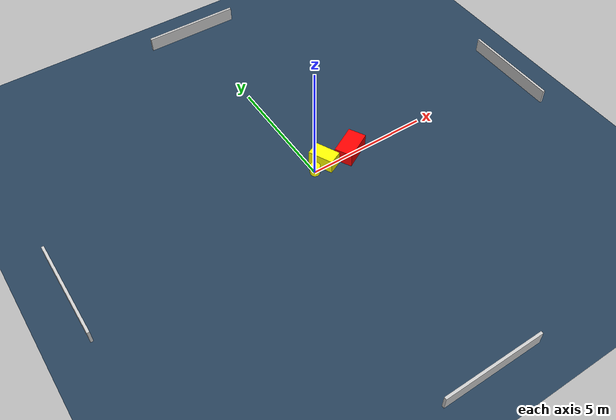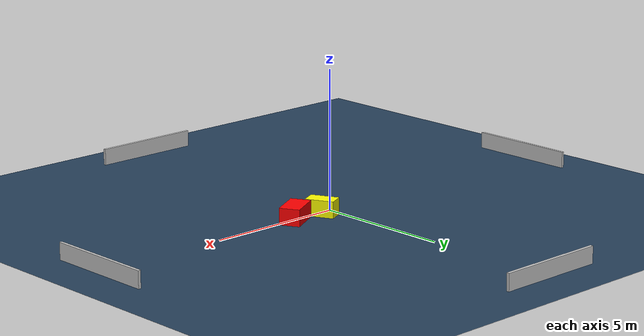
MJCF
<?xml version="1.0" ?>
<mujoco model="generated_environment">
  <option timestep="0.01" integrator="RK4" cone="elliptic"/>
  <default>
    <geom density="1"/>
  </default>
  <asset>
    <texture builtin="gradient" height="3072" name="skybox" rgb1="0.3 0.5 0.7" rgb2="0 0 0" type="skybox" width="512"/>
    <texture builtin="checker" height="300" name="groundplane" rgb1="0.2 0.3 0.4" rgb2="0.1 0.2 0.3" type="2d" width="300"/>
    <material name="groundplane" reflectance="0.2" texrepeat="5 5" texture="groundplane"/>
  </asset>
  <worldbody>
    <light dir="0 0 -1" directional="true" pos="0 0 1.5"/>
    <geom condim="3" friction="0.5 0.005 0.001" material="groundplane" name="floor" pos="0 0 0" size="0 0 0.05" type="plane"/>
    <body name="walls">
      <geom name="wall_1" condim="4" pos="-10.0 0.0 0.3" rgba="0.800000011920929 0.800000011920929 0.800000011920929 1.0" size="0.05 2.0 0.3" type="box"/>
      <geom name="wall_2" condim="4" pos="10.0 0.0 0.3" rgba="0.800000011920929 0.800000011920929 0.800000011920929 1.0" size="0.05 2.0 0.3" type="box"/>
      <geom name="wall_3" condim="4" pos="0.0 -10.0 0.3" rgba="0.800000011920929 0.800000011920929 0.800000011920929 1.0" size="2.0 0.05 0.3" type="box"/>
      <geom name="wall_4" condim="4" pos="0.0 10.0 0.3" rgba="0.800000011920929 0.800000011920929 0.800000011920929 1.0" size="2.0 0.05 0.3" type="box"/>
    </body>
    <body name="robot">
      <joint name="joint_x" type="slide" pos="0 0 0" axis="1 0 0"/>
      <joint name="joint_y" type="slide" pos="0 0 0" axis="0 1 0"/>
      <geom name="robot" type="cylinder" pos="0.0 0.0 0.2" size="0.2 0.2 0.0" mass="5.0" friction="1.0 0.005 0.0001" condim="4" rgba="1.0 1.0 0.0 1.0"/>
    </body>
    <body name="obstacle_1_movable">
      <geom name="obstacle_1_movable" condim="4" pos="0.5637996491415299 0.2196264512967543 0.3" euler="0 0 205.60356146076694" friction="0.0 0.005 0.001" rgba="1.0 1.0 0.0 1.0" size="0.2915938789268968 0.5127489334833693 0.3" type="box" mass="0.1"/>
      <joint type="free"/>
    </body>
    <body name="obstacle_2_static">
      <geom name="obstacle_2_static" condim="4" pos="1.7126286329969571 0.10002843140061206 0.3" euler="0 0 28.357039587432453" friction="0.0 0.005 0.001" rgba="1.0 0.0 0.0 1.0" size="0.6113980596327712 0.3632467615847033 0.3" type="box"/>
    </body>
  </worldbody>
  <actuator>
    <motor name="actuator_x" joint="joint_x" gear="1" ctrlrange="-1 1"/>
    <motor name="actuator_y" joint="joint_y" gear="1" ctrlrange="-1 1"/>
  </actuator>
</mujoco>
